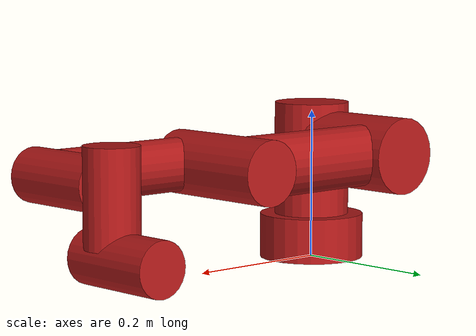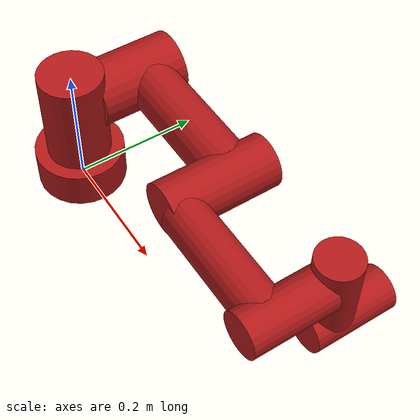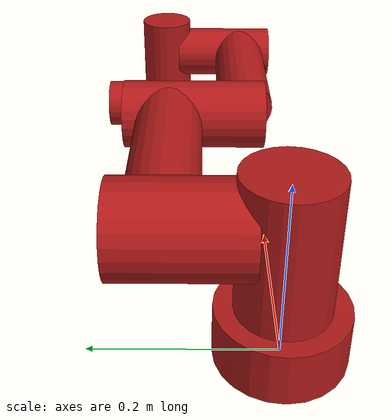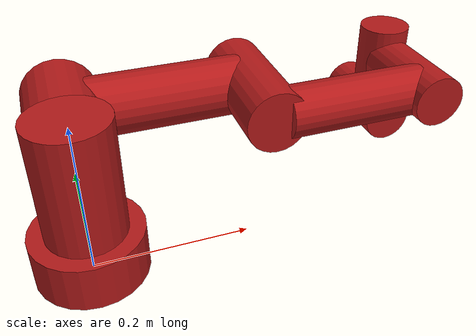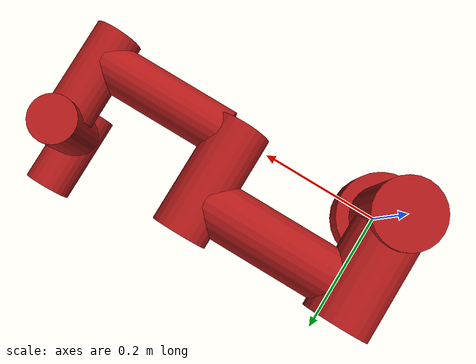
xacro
<?xml version="1.0"?>
<robot xmlns:xacro="http://ros.org/wiki/xacro"
       name="ur3e" >

  <!--
  Per https://github.com/ros-industrial/universal_robot/blob/melodic-devel/ur_description/package.xml
  the ur_description package from which these files are derived is BSD licensed.
-->

  <!-- ur3e -->
  <xacro:include filename="ur3e_cylinder.urdf.xacro" />

  <!-- arm -->
  <!-- Limit all collision shapes to be spheres -->
  <!-- We limit joint limits to [-pi, pi] rather than the full range [-2pi, 2pi]
       since the larger limits cause problems with planning. -->
  <xacro:ur3e_robot prefix="ur_" joint_limited="true"
  weld_wrist="false" visual_collision_same="true"/>
</robot>

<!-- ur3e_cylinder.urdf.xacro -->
<robot xmlns:xacro="http://ros.org/wiki/xacro" xmlns:drake="https://drake.mit.edu">

<!--
  TODO(calderpg-tri, sammy-tri, ggould-tri) The acceleration limits in this
  file are wrong. Try to find the right value.
-->

  <xacro:include filename="ur.transmission.xacro" />

   <xacro:macro name="cylinder_inertial" params="radius length mass *origin">
    <inertial>
      <mass value="${mass}" />
      <xacro:insert_block name="origin" />
      <inertia ixx="${0.0833333 * mass * (3 * radius * radius + length * length)}" ixy="0.0" ixz="0.0"
        iyy="${0.0833333 * mass * (3 * radius * radius + length * length)}" iyz="0.0"
        izz="${0.5 * mass * radius * radius}" />
    </inertial>
  </xacro:macro>

  <xacro:macro name="ur3e_robot" params="prefix joint_limited weld_wrist visual_collision_same
    shoulder_pan_lower_limit:=${-0.9*pi}    shoulder_pan_upper_limit:=${0.9*pi}
    shoulder_lift_lower_limit:=${-0.9*pi}    shoulder_lift_upper_limit:=${0.9*pi}
    elbow_joint_lower_limit:=${-0.9*pi}    elbow_joint_upper_limit:=${0.9*pi}
    wrist_1_lower_limit:=${-0.9*pi}    wrist_1_upper_limit:=${0.9*pi}
    wrist_2_lower_limit:=${-0.9*pi}    wrist_2_upper_limit:=${0.9*pi}
    wrist_3_lower_limit:=${-0.9*pi}    wrist_3_upper_limit:=${0.9*pi}
    transmission_hw_interface:=hardware_interface/PositionJointInterface
    safety_limits:=false safety_pos_margin:=0.15
    safety_k_position:=20">

    <!-- Inertia parameters -->
    <xacro:property name="base_mass" value="2.0" />  <!-- This mass might be incorrect -->
    <xacro:property name="shoulder_mass" value="2.0" />
    <xacro:property name="upper_arm_mass" value="3.42" />
    <xacro:property name="forearm_mass" value="1.26" />
    <xacro:property name="wrist_1_mass" value="0.8" />
    <xacro:property name="wrist_2_mass" value="0.8" />
    <xacro:property name="wrist_3_mass" value="0.35" />

    <xacro:property name="shoulder_cog" value="0.0 -0.02 0.0" />
    <xacro:property name="upper_arm_cog" value="0.13 0.0 0.1157" />
    <xacro:property name="forearm_cog" value="0.05 0.0 0.0238" />
    <xacro:property name="wrist_1_cog" value="0.0 0.0 0.01" />
    <xacro:property name="wrist_2_cog" value="0.0 0.0 0.01" />
    <xacro:property name="wrist_3_cog" value="0.0 0.0 -0.02" />

    <!-- Kinematic model -->
    <!-- Properties from urcontrol.conf -->
    <xacro:property name="d1" value="0.152" />
    <xacro:property name="a2" value="-0.244" />
    <xacro:property name="a3" value="-0.213" />
    <xacro:property name="d4" value="0.104" />
    <xacro:property name="d5" value="0.085" />
    <xacro:property name="d6" value="0.092" />

    <!-- Arbitrary offsets for shoulder/elbow joints -->
    <xacro:property name="shoulder_offset" value="0.120" />  <!-- measured from model -->
    <xacro:property name="elbow_offset" value="-0.093" /> <!-- measured from model -->

    <!-- link lengths used in model -->
    <xacro:property name="shoulder_height" value="${d1}" />
    <xacro:property name="upper_arm_length" value="${-a2}" />
    <xacro:property name="forearm_length" value="${-a3}" />
    <xacro:property name="wrist_1_length" value="${d4}" />
    <xacro:property name="wrist_2_length" value="${d5}" />
    <xacro:property name="wrist_3_length" value="${d6}" />

    <link name="${prefix}base_link" >
      <xacro:unless value="${visual_collision_same}">
        <visual>
          <origin rpy="0 0 0" xyz="0.0 0.0 0.0"/>
          <geometry>
            <mesh filename="base.obj"/>
          </geometry>
          <material name="LightGrey">
            <color rgba="0.7 0.7 0.7 1.0"/>
          </material>
        </visual>
      </xacro:unless>
      <xacro:if value="${visual_collision_same}">
        <visual name="base_cylinder">
          <origin rpy="0 0 0" xyz="0 0 0.03"/>
          <geometry>
            <cylinder radius="0.07" length="0.06"/>
          </geometry>
          <material name="LightRed">
            <color rgba="0.7 0.1 0.1 1.0"/>
          </material>
        </visual>
      </xacro:if>
      <collision name="base_cylinder">
        <origin rpy="0 0 0" xyz="0 0 0.03"/>
        <geometry>
          <cylinder radius="0.07" length="0.06"/>
        </geometry>
      </collision>
      <xacro:cylinder_inertial radius="0.075" length="0.038" mass="${base_mass}">
        <origin xyz="0.0 0.0 0.0" rpy="0 0 0" />
      </xacro:cylinder_inertial>
    </link>

    <joint name="${prefix}shoulder_pan_joint" type="revolute">
      <parent link="${prefix}base_link" />
      <child link = "${prefix}shoulder_link" />
      <origin xyz="0.0 0.0 ${shoulder_height}" rpy="0.0 0.0 0.0" />
      <axis xyz="0 0 1" />
      <xacro:unless value="${joint_limited}">
        <limit lower="${-2.0 * pi}" upper="${2.0 * pi}" effort="330.0" velocity="3.14" drake:acceleration="2.5"/>
        <xacro:if value="${safety_limits}">
          <safety_controller soft_lower_limit="${-2.0 * pi + safety_pos_margin}" soft_upper_limit="${2.0 * pi - safety_pos_margin}" k_position="${safety_k_position}" k_velocity="0.0"/>
        </xacro:if>
      </xacro:unless>
      <xacro:if value="${joint_limited}">
        <limit lower="${shoulder_pan_lower_limit}" upper="${shoulder_pan_upper_limit}" effort="330.0" velocity="3.14" drake:acceleration="2.5"/>
        <xacro:if value="${safety_limits}">
          <safety_controller soft_lower_limit="${shoulder_pan_lower_limit + safety_pos_margin}" soft_upper_limit="${shoulder_pan_upper_limit - safety_pos_margin}" k_position="${safety_k_position}" k_velocity="0.0"/>
        </xacro:if>
      </xacro:if>
      <dynamics damping="0.0" friction="0.0"/>
    </joint>

    <link name="${prefix}shoulder_link">
      <xacro:unless value="${visual_collision_same}">
        <visual>
          <origin rpy="0 0 0" xyz="0.0 0.0 0.0"/>
          <geometry>
            <mesh filename="shoulder.obj"/>
          </geometry>
          <material name="LightGrey">
            <color rgba="0.7 0.7 0.7 1.0"/>
          </material>
        </visual>
      </xacro:unless>
      <xacro:if value="${visual_collision_same}">
        <visual name="shoulder_cylinder">
          <origin rpy="0 0 0" xyz="0.0 0.0 -0.02"/>
          <geometry>
            <cylinder radius="0.05" length="0.16"/>
          </geometry>
          <material name="LightRed">
            <color rgba="0.7 0.1 0.1 1.0"/>
          </material>
        </visual>
      </xacro:if>
      <collision name="shoulder_cylinder">
        <origin rpy="0 0 0" xyz="0.0 0.0 -0.02"/>
        <geometry>
          <cylinder radius="0.05" length="0.16"/>
        </geometry>
      </collision>
      <xacro:cylinder_inertial radius="0.075" length="0.178" mass="${shoulder_mass}">
        <origin xyz="0.0 0.0 0.0" rpy="0 0 0" />
      </xacro:cylinder_inertial>
    </link>

    <joint name="${prefix}shoulder_lift_joint" type="revolute">
      <parent link="${prefix}shoulder_link" />
      <child link = "${prefix}upper_arm_link" />
      <origin xyz="0.0 ${shoulder_offset} 0.0" rpy="0.0 ${pi / 2.0} 0.0" />
      <axis xyz="0 1 0" />
      <xacro:unless value="${joint_limited}">
        <limit lower="${-2.0 * pi}" upper="${2.0 * pi}" effort="330.0" velocity="3.14" drake:acceleration="2.5"/>
        <xacro:if value="${safety_limits}">
          <safety_controller soft_lower_limit="${-2.0 * pi + safety_pos_margin}" soft_upper_limit="${2.0 * pi - safety_pos_margin}" k_position="${safety_k_position}" k_velocity="0.0"/>
        </xacro:if>
      </xacro:unless>
      <xacro:if value="${joint_limited}">
        <limit lower="${shoulder_lift_lower_limit}" upper="${shoulder_lift_upper_limit}" effort="330.0" velocity="3.14" drake:acceleration="2.5"/>
        <xacro:if value="${safety_limits}">
          <safety_controller soft_lower_limit="${shoulder_lift_lower_limit + safety_pos_margin}" soft_upper_limit="${shoulder_lift_upper_limit - safety_pos_margin}" k_position="${safety_k_position}" k_velocity="0.0"/>
        </xacro:if>
      </xacro:if>
      <dynamics damping="0.0" friction="0.0"/>
    </joint>

    <link name="${prefix}upper_arm_link">
      <xacro:unless value="${visual_collision_same}">
        <visual>
          <origin rpy="0 0 0" xyz="0.0 0.0 0.0"/>
          <geometry>
            <mesh filename="upperarm.obj"/>
          </geometry>
          <material name="LightGrey">
            <color rgba="0.7 0.7 0.7 1.0"/>
          </material>
        </visual>
      </xacro:unless>
      <xacro:if value="${visual_collision_same}">
        <visual name="upper_arm_cylinder1">
          <origin rpy="${pi/2.0} 0 0" xyz="0.0 -0.02 0.0"/>
          <geometry>
            <cylinder radius="0.05" length="0.14"/>
          </geometry>
          <material name="LightRed">
            <color rgba="0.7 0.1 0.1 1.0"/>
          </material>
        </visual>
      </xacro:if>
      <collision name="upper_arm_cylinder1">
        <origin rpy="${pi/2.0} 0 0" xyz="0.0 -0.02 0.0"/>
        <geometry>
          <cylinder radius="0.05" length="0.14"/>
        </geometry>
      </collision>
      <xacro:if value="${visual_collision_same}">
        <visual name="upper_arm_cylinder2">
          <origin rpy="0 0 0" xyz="0.0 0.0 ${upper_arm_length/2.0 + 0.005}"/>
          <geometry>
            <cylinder radius="0.04" length="0.21"/>
          </geometry>
          <material name="LightRed">
            <color rgba="0.7 0.1 0.1 1.0"/>
          </material>
        </visual>
      </xacro:if>
      <collision name="upper_arm_cylinder2">
        <origin rpy="0 0 0" xyz="0.0 0.0 ${upper_arm_length/2.0 + 0.005}"/>
        <geometry>
          <cylinder radius="0.04" length="0.21"/>
        </geometry>
      </collision>
      <xacro:if value="${visual_collision_same}">
        <visual name="upper_arm_cylinder3">
          <origin rpy="${pi/2.0} 0 0" xyz="0.0 -0.03 ${upper_arm_length - 0.001}"/>
          <geometry>
            <cylinder radius="0.041" length="0.17"/>
          </geometry>
          <material name="LightRed">
            <color rgba="0.7 0.1 0.1 1.0"/>
          </material>
        </visual>
      </xacro:if>
      <collision name="upper_arm_cylinder3">
        <origin rpy="${pi/2.0} 0 0" xyz="0.0 -0.03 ${upper_arm_length - 0.001}"/>
        <geometry>
          <cylinder radius="0.041" length="0.17"/>
        </geometry>
      </collision>
      <xacro:cylinder_inertial radius="0.075" length="${-a2}" mass="${upper_arm_mass}">
        <origin xyz="0.0 0.0 ${-a2/2.0}" rpy="0 0 0" />
      </xacro:cylinder_inertial>
    </link>

    <joint name="${prefix}elbow_joint" type="revolute">
      <parent link="${prefix}upper_arm_link" />
      <child link = "${prefix}forearm_link" />
      <origin xyz="0.0 ${elbow_offset} ${upper_arm_length}" rpy="0.0 0.0 0.0" />
      <axis xyz="0 1 0" />
      <xacro:unless value="${joint_limited}">
        <limit lower="${-pi}" upper="${pi}" effort="150.0" velocity="3.14" drake:acceleration="2.5"/>
        <xacro:if value="${safety_limits}">
          <safety_controller soft_lower_limit="${-2.0 * pi + safety_pos_margin}" soft_upper_limit="${2.0 * pi - safety_pos_margin}" k_position="${safety_k_position}" k_velocity="0.0"/>
        </xacro:if>
      </xacro:unless>
      <xacro:if value="${joint_limited}">
        <limit lower="${elbow_joint_lower_limit}" upper="${elbow_joint_upper_limit}" effort="150.0" velocity="3.14" drake:acceleration="2.5"/>
        <xacro:if value="${safety_limits}">
          <safety_controller soft_lower_limit="${elbow_joint_lower_limit + safety_pos_margin}" soft_upper_limit="${elbow_joint_upper_limit - safety_pos_margin}" k_position="${safety_k_position}" k_velocity="0.0"/>
        </xacro:if>
      </xacro:if>
      <dynamics damping="0.0" friction="0.0"/>
    </joint>

    <link name="${prefix}forearm_link">
      <xacro:unless value="${visual_collision_same}">
        <visual>
          <origin rpy="0 0 0" xyz="0.0 0.0 0.0"/>
          <geometry>
            <mesh filename="forearm.obj"/>
          </geometry>
          <material name="LightGrey">
            <color rgba="0.7 0.7 0.7 1.0"/>
          </material>
        </visual>
      </xacro:unless>
      <xacro:if value="${visual_collision_same}">
        <visual name="forearm_cylinder1">
          <origin rpy="0 0 0" xyz="0.0 0.0 ${forearm_length/2.0 + 0.005}"/>
          <geometry>
            <cylinder radius="0.034" length="0.19"/>
          </geometry>
          <material name="LightRed">
            <color rgba="0.7 0.1 0.1 1.0"/>
          </material>
        </visual>
        <visual name="forearm_cylinder2">
          <origin rpy="${pi/2.0} 0 0" xyz="0.0 0.022 ${forearm_length}"/>
          <geometry>
            <cylinder radius="0.034" length="0.13"/>
          </geometry>
          <material name="LightRed">
            <color rgba="0.7 0.1 0.1 1.0"/>
          </material>
        </visual>
      </xacro:if>
      <collision name="forearm_cylinder1">
        <origin rpy="0 0 0" xyz="0.0 0.0 ${forearm_length/2.0 + 0.005}"/>
        <geometry>
          <cylinder radius="0.034" length="0.19"/>
        </geometry>
      </collision>
      <collision name="forearm_cylinder2">
        <origin rpy="${pi/2.0} 0 0" xyz="0.0 0.022 ${forearm_length}"/>
        <geometry>
          <cylinder radius="0.034" length="0.13"/>
        </geometry>
      </collision>
      <xacro:cylinder_inertial radius="0.075" length="${-a3}" mass="${forearm_mass}">
        <origin xyz="0.0 0.0 ${-a3/2.0}" rpy="0 0 0" />
      </xacro:cylinder_inertial>
    </link>

    <joint name="${prefix}wrist_1_joint" type="revolute">
      <parent link="${prefix}forearm_link" />
      <child link = "${prefix}wrist_1_link" />
      <origin xyz="0.0 0.0 ${forearm_length}" rpy="0.0 ${pi / 2.0} 0.0" />
      <axis xyz="0 1 0" />
      <xacro:unless value="${joint_limited}">
        <limit lower="${-2.0 * pi}" upper="${2.0 * pi}" effort="54.0" velocity="6.28" drake:acceleration="2.5"/>
        <xacro:if value="${safety_limits}">
          <safety_controller soft_lower_limit="${-2.0 * pi + safety_pos_margin}" soft_upper_limit="${2.0 * pi - safety_pos_margin}" k_position="${safety_k_position}" k_velocity="0.0"/>
        </xacro:if>
      </xacro:unless>
      <xacro:if value="${joint_limited}">
        <limit lower="${wrist_1_lower_limit}" upper="${wrist_1_upper_limit}" effort="54.0" velocity="6.28" drake:acceleration="2.5"/>
        <xacro:if value="${safety_limits}">
          <safety_controller soft_lower_limit="${wrist_1_lower_limit + safety_pos_margin}" soft_upper_limit="${wrist_1_upper_limit - safety_pos_margin}" k_position="${safety_k_position}" k_velocity="0.0"/>
        </xacro:if>
      </xacro:if>
      <dynamics damping="0.0" friction="0.0"/>
    </joint>

    <link name="${prefix}wrist_1_link">
      <xacro:unless value="${visual_collision_same}">
      <visual>
        <origin rpy="0 0 0" xyz="0.0 0.0 0.0"/>
        <geometry>
          <mesh filename="wrist1.obj"/>
        </geometry>
        <material name="LightGrey">
          <color rgba="0.7 0.7 0.7 1.0"/>
        </material>
      </visual>
      </xacro:unless>
      <xacro:if value="${visual_collision_same}">
        <visual name="wrist_1_cylinder">
          <origin rpy="0 0 0" xyz="0.0 0.105 0.012"/>
          <geometry>
            <cylinder radius="0.034" length="0.12"/>
          </geometry>
          <material name="LightRed">
            <color rgba="0.7 0.1 0.1 1.0"/>
          </material>
        </visual>
      </xacro:if>
      <collision name="wrist_1_cylinder">
        <origin rpy="0 0 0" xyz="0.0 0.105 0.012"/>
        <geometry>
          <cylinder radius="0.034" length="0.12"/>
        </geometry>
      </collision>
      <xacro:cylinder_inertial radius="0.075" length="0.12" mass="${wrist_1_mass}">
        <origin xyz="0.0 ${wrist_1_length} 0.0" rpy="0 0 0" />
      </xacro:cylinder_inertial>
    </link>

    <joint name="${prefix}wrist_2_joint" type="revolute">
      <parent link="${prefix}wrist_1_link" />
      <child link = "${prefix}wrist_2_link" />
      <origin xyz="0.0 ${wrist_1_length} 0.0" rpy="0.0 0.0 0.0" />
      <axis xyz="0 0 1" />
      <xacro:unless value="${joint_limited}">
        <limit lower="${-2.0 * pi}" upper="${2.0 * pi}" effort="54.0" velocity="6.28" drake:acceleration="2.5"/>
        <xacro:if value="${safety_limits}">
          <safety_controller soft_lower_limit="${-2.0 * pi + safety_pos_margin}" soft_upper_limit="${2.0 * pi - safety_pos_margin}" k_position="${safety_k_position}" k_velocity="0.0"/>
        </xacro:if>
      </xacro:unless>
      <xacro:if value="${joint_limited}">
        <limit lower="${wrist_2_lower_limit}" upper="${wrist_2_upper_limit}" effort="54.0" velocity="6.28" drake:acceleration="2.5"/>
        <xacro:if value="${safety_limits}">
          <safety_controller soft_lower_limit="${wrist_2_lower_limit + safety_pos_margin}" soft_upper_limit="${wrist_2_upper_limit - safety_pos_margin}" k_position="${safety_k_position}" k_velocity="0.0"/>
        </xacro:if>
      </xacro:if>
      <dynamics damping="0.0" friction="0.0"/>
    </joint>

    <link name="${prefix}wrist_2_link">
      <origin rpy="${pi / 2} 0 0" xyz="0.0 0.0 0.0"/>
      <xacro:unless value="${visual_collision_same}">
      <visual>
        <origin rpy="0 0 0" xyz="0.0 0.0 0.0"/>
        <geometry>
          <mesh filename="wrist2.obj"/>
        </geometry>
        <material name="LightGrey">
          <color rgba="0.7 0.7 0.7 1.0"/>
        </material>
      </visual>
      </xacro:unless>
      <xacro:if value="${visual_collision_same}">
        <visual name="wrist_2_cylinder">
          <origin rpy="${pi/2} 0 0" xyz="0.0 0.025 0.085"/>
          <geometry>
            <cylinder radius="0.034" length="0.13"/>
          </geometry>
          <material name="LightRed">
            <color rgba="0.7 0.1 0.1 1.0"/>
          </material>
        </visual>
      </xacro:if>
      <collision name="wrist_2_cylinder">
        <origin rpy="${pi/2} 0 0" xyz="0.0 0.025 0.085"/>
        <geometry>
          <cylinder radius="0.034" length="0.13"/>
        </geometry>
      </collision>
      <xacro:cylinder_inertial radius="0.075" length="0.12" mass="${wrist_2_mass}">
        <origin xyz="0.0 0.0 ${wrist_2_length}" rpy="0 0 0" />
      </xacro:cylinder_inertial>
    </link>

    <xacro:unless value="${weld_wrist}">
      <joint name="${prefix}wrist_3_joint" type="revolute">
        <parent link="${prefix}wrist_2_link" />
        <child link = "${prefix}wrist_3_link" />
        <origin xyz="0.0 0.0 ${wrist_2_length}" rpy="0.0 0.0 0.0" />
        <axis xyz="0 1 0" />
        <xacro:unless value="${joint_limited}">
          <limit lower="${-2.0 * pi}" upper="${2.0 * pi}" effort="54.0" velocity="6.28" drake:acceleration="2.5"/>
          <xacro:if value="${safety_limits}">
            <safety_controller soft_lower_limit="${-2.0 * pi + safety_pos_margin}" soft_upper_limit="${2.0 * pi - safety_pos_margin}" k_position="${safety_k_position}" k_velocity="0.0"/>
          </xacro:if>
        </xacro:unless>
        <xacro:if value="${joint_limited}">
          <limit lower="${wrist_3_lower_limit}" upper="${wrist_3_upper_limit}" effort="54.0" velocity="6.28" drake:acceleration="2.5"/>
          <xacro:if value="${safety_limits}">
            <safety_controller soft_lower_limit="${wrist_3_lower_limit + safety_pos_margin}" soft_upper_limit="${wrist_3_upper_limit - safety_pos_margin}" k_position="${safety_k_position}" k_velocity="0.0"/>
          </xacro:if>
        </xacro:if>
        <dynamics damping="0.0" friction="0.0"/>
      </joint>
    </xacro:unless>
    <xacro:if value="${weld_wrist}">
      <joint name="${prefix}wrist_3_joint" type="fixed">
        <parent link="${prefix}wrist_2_link" />
        <child link = "${prefix}wrist_3_link" />
        <origin xyz="0.0 0.0 ${wrist_2_length}" rpy="0.0 0.0 0.0" />
      </joint>
    </xacro:if>

    <link name="${prefix}wrist_3_link">
      <xacro:unless value="${visual_collision_same}">
        <visual>
          <origin rpy="0 0 0" xyz="0.0 0.0 0.0"/>
          <geometry>
            <mesh filename="wrist3.obj"/>
          </geometry>
          <material name="LightGrey">
            <color rgba="0.7 0.7 0.7 1.0"/>
          </material>
        </visual>
      </xacro:unless>
      <xacro:cylinder_inertial radius="0.032" length="0.042" mass="${wrist_3_mass}">
        <origin xyz="0.0 ${wrist_3_length - 0.021} 0.0" rpy="${pi/2} 0 0" />
      </xacro:cylinder_inertial>
    </link>

    <joint name="${prefix}ee_fixed_joint" type="fixed">
      <parent link="${prefix}wrist_3_link" />
      <child link = "${prefix}ee_link" />
      <origin xyz="0.0 ${wrist_3_length} 0.0" rpy="0.0 0.0 ${pi/2.0}" />
    </joint>

    <link name="${prefix}ee_link"/>

    <xacro:ur_arm_transmission prefix="${prefix}" />

    <!-- ROS base_link to UR 'Base' Coordinates transform -->
    <link name="${prefix}base"/>
    <joint name="${prefix}base_link-base_fixed_joint" type="fixed">
      <!-- NOTE: this rotation is only needed as long as base_link itself is
                 not corrected wrt the real robot (ie: rotated over 180
                 degrees)
      -->
      <origin xyz="0 0 0" rpy="0 0 ${-pi}"/>
      <parent link="${prefix}base_link"/>
      <child link="${prefix}base"/>
    </joint>

    <!-- Frame coincident with all-zeros TCP on UR controller -->
    <link name="${prefix}tool0"/>
    <joint name="${prefix}wrist_3_link-tool0_fixed_joint" type="fixed">
      <origin xyz="0 ${wrist_3_length} 0" rpy="${pi/-2.0} 0 0"/>
      <parent link="${prefix}wrist_3_link"/>
      <child link="${prefix}tool0"/>
    </joint>

  </xacro:macro>
</robot>
